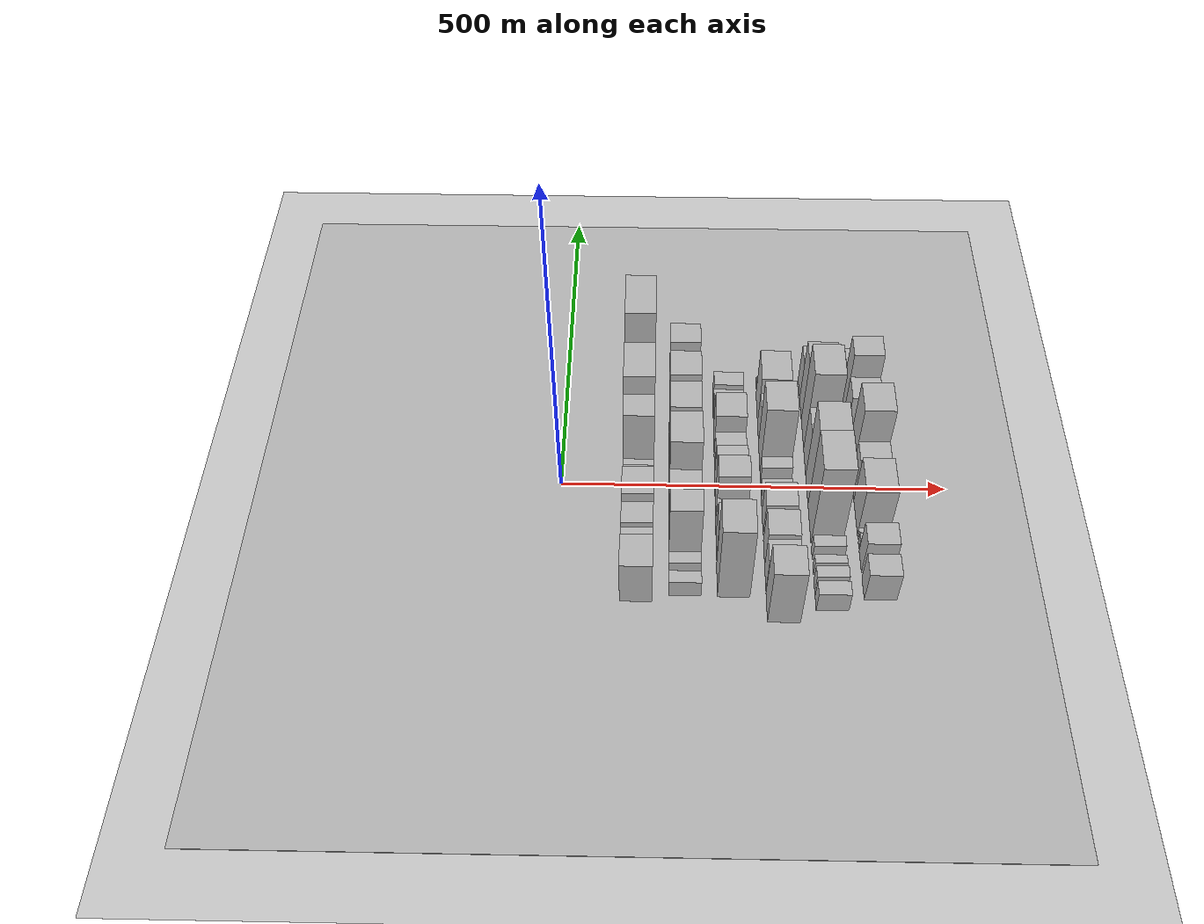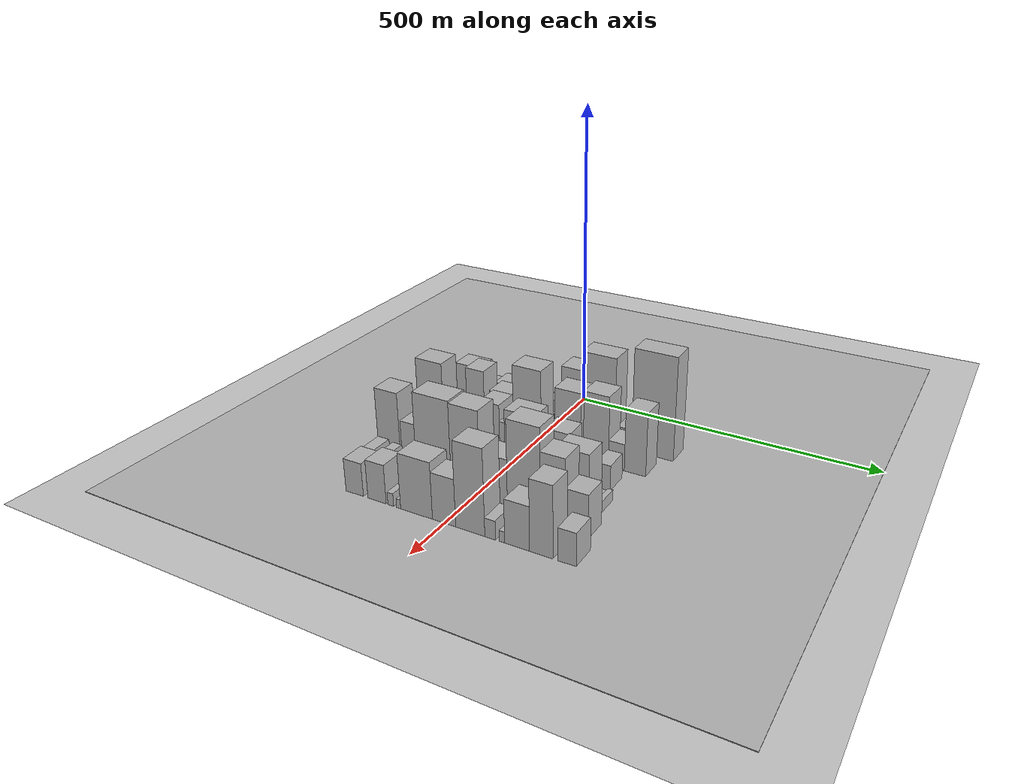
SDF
<sdf version="1.6">
 <world name="default">
  <include><name>ground_plane_1</name><uri>model://HANNAS_ground_plane</uri></include>
  <include>
   <name>ground_plane_2</name>
   <uri>model://HANNAS_ground_plane</uri>
   <pose>100 0 0  0 0 0</pose>
  </include>
  <model name="building_24">
   <static>1</static>
   <pose>100.0000 -155.9726 0 0.000000 0.000000 0.000000</pose>
   <link name="link">
    <pose>0 0 39.00 0 0 0</pose>
    <collision name="collision"><geometry><box><size>40.0000 46.3381 78.0000</size></box></geometry></collision>
    <visual name="visual">
     <cast_shadows>0</cast_shadows>
     <geometry><box><size>40.0000 46.3381 78.0000</size></box></geometry>
     <material>
      <script>
       <uri>model://HANNAS_wall/materials/scripts</uri>
       <uri>model://HANNAS_wall/materials/textures</uri>
       <name>vrc/HANNAS_wall</name>
      </script>
     </material>
    </visual>
   </link>
  </model>
  <model name="building_25">
   <static>1</static>
   <pose>100.0000 -118.1382 0 0.000000 0.000000 0.000000</pose>
   <link name="link">
    <pose>0 0 25.50 0 0 0</pose>
    <collision name="collision"><geometry><box><size>40.0000 29.3307 51.0000</size></box></geometry></collision>
    <visual name="visual">
     <cast_shadows>0</cast_shadows>
     <geometry><box><size>40.0000 29.3307 51.0000</size></box></geometry>
     <material>
      <script>
       <uri>model://HANNAS_wall/materials/scripts</uri>
       <uri>model://HANNAS_wall/materials/textures</uri>
       <name>vrc/HANNAS_wall</name>
      </script>
     </material>
    </visual>
   </link>
  </model>
  <model name="building_26">
   <static>1</static>
   <pose>100.0000 -87.1877 0 0.000000 0.000000 0.000000</pose>
   <link name="link">
    <pose>0 0 30.00 0 0 0</pose>
    <collision name="collision"><geometry><box><size>40.0000 32.5704 60.0000</size></box></geometry></collision>
    <visual name="visual">
     <cast_shadows>0</cast_shadows>
     <geometry><box><size>40.0000 32.5704 60.0000</size></box></geometry>
     <material>
      <script>
       <uri>model://HANNAS_wall/materials/scripts</uri>
       <uri>model://HANNAS_wall/materials/textures</uri>
       <name>vrc/HANNAS_wall</name>
      </script>
     </material>
    </visual>
   </link>
  </model>
  <model name="building_27">
   <static>1</static>
   <pose>100.0000 -46.4277 0 0.000000 0.000000 0.000000</pose>
   <link name="link">
    <pose>0 0 36.00 0 0 0</pose>
    <collision name="collision"><geometry><box><size>40.0000 42.9495 72.0000</size></box></geometry></collision>
    <visual name="visual">
     <cast_shadows>0</cast_shadows>
     <geometry><box><size>40.0000 42.9495 72.0000</size></box></geometry>
     <material>
      <script>
       <uri>model://HANNAS_wall/materials/scripts</uri>
       <uri>model://HANNAS_wall/materials/textures</uri>
       <name>vrc/HANNAS_wall</name>
      </script>
     </material>
    </visual>
   </link>
  </model>
  <model name="building_28">
   <static>1</static>
   <pose>100.0000 -13.3222 0 0.000000 0.000000 0.000000</pose>
   <link name="link">
    <pose>0 0 22.50 0 0 0</pose>
    <collision name="collision"><geometry><box><size>40.0000 23.2615 45.0000</size></box></geometry></collision>
    <visual name="visual">
     <cast_shadows>0</cast_shadows>
     <geometry><box><size>40.0000 23.2615 45.0000</size></box></geometry>
     <material>
      <script>
       <uri>model://HANNAS_wall/materials/scripts</uri>
       <uri>model://HANNAS_wall/materials/textures</uri>
       <name>vrc/HANNAS_wall</name>
      </script>
     </material>
    </visual>
   </link>
  </model>
  <model name="building_29">
   <static>1</static>
   <pose>100.0000 11.5886 0 0.000000 0.000000 0.000000</pose>
   <link name="link">
    <pose>0 0 15.00 0 0 0</pose>
    <collision name="collision"><geometry><box><size>40.0000 16.5600 30.0000</size></box></geometry></collision>
    <visual name="visual">
     <cast_shadows>0</cast_shadows>
     <geometry><box><size>40.0000 16.5600 30.0000</size></box></geometry>
     <material>
      <script>
       <uri>model://HANNAS_wall/materials/scripts</uri>
       <uri>model://HANNAS_wall/materials/textures</uri>
       <name>vrc/HANNAS_wall</name>
      </script>
     </material>
    </visual>
   </link>
  </model>
  <model name="building_30">
   <static>1</static>
   <pose>100.0000 37.7941 0 0.000000 0.000000 0.000000</pose>
   <link name="link">
    <pose>0 0 58.50 0 0 0</pose>
    <collision name="collision"><geometry><box><size>40.0000 35.8511 117.0000</size></box></geometry></collision>
    <visual name="visual">
     <cast_shadows>0</cast_shadows>
     <geometry><box><size>40.0000 35.8511 117.0000</size></box></geometry>
     <material>
      <script>
       <uri>model://HANNAS_wall/materials/scripts</uri>
       <uri>model://HANNAS_wall/materials/textures</uri>
       <name>vrc/HANNAS_wall</name>
      </script>
     </material>
    </visual>
   </link>
  </model>
  <model name="building_31">
   <static>1</static>
   <pose>100.0000 84.9089 0 0.000000 0.000000 0.000000</pose>
   <link name="link">
    <pose>0 0 75.00 0 0 0</pose>
    <collision name="collision"><geometry><box><size>40.0000 58.3783 150.0000</size></box></geometry></collision>
    <visual name="visual">
     <cast_shadows>0</cast_shadows>
     <geometry><box><size>40.0000 58.3783 150.0000</size></box></geometry>
     <material>
      <script>
       <uri>model://HANNAS_wall/materials/scripts</uri>
       <uri>model://HANNAS_wall/materials/textures</uri>
       <name>vrc/HANNAS_wall</name>
      </script>
     </material>
    </visual>
   </link>
  </model>
  <model name="building_32">
   <static>1</static>
   <pose>100.0000 128.4853 0 0.000000 0.000000 0.000000</pose>
   <link name="link">
    <pose>0 0 18.00 0 0 0</pose>
    <collision name="collision"><geometry><box><size>40.0000 20.7746 36.0000</size></box></geometry></collision>
    <visual name="visual">
     <cast_shadows>0</cast_shadows>
     <geometry><box><size>40.0000 20.7746 36.0000</size></box></geometry>
     <material>
      <script>
       <uri>model://HANNAS_wall/materials/scripts</uri>
       <uri>model://HANNAS_wall/materials/textures</uri>
       <name>vrc/HANNAS_wall</name>
      </script>
     </material>
    </visual>
   </link>
  </model>
  <model name="building_33">
   <static>1</static>
   <pose>100.0000 177.5142 0 0.000000 0.000000 0.000000</pose>
   <link name="link">
    <pose>0 0 87.00 0 0 0</pose>
    <collision name="collision"><geometry><box><size>40.0000 69.2832 174.0000</size></box></geometry></collision>
    <visual name="visual">
     <cast_shadows>0</cast_shadows>
     <geometry><box><size>40.0000 69.2832 174.0000</size></box></geometry>
     <material>
      <script>
       <uri>model://HANNAS_wall/materials/scripts</uri>
       <uri>model://HANNAS_wall/materials/textures</uri>
       <name>vrc/HANNAS_wall</name>
      </script>
     </material>
    </visual>
   </link>
  </model>
  <model name="building_74">
   <static>1</static>
   <pose>160.0000 -161.2127 0 0.000000 0.000000 0.000000</pose>
   <link name="link">
    <pose>0 0 15.00 0 0 0</pose>
    <collision name="collision"><geometry><box><size>40.0000 17.3645 30.0000</size></box></geometry></collision>
    <visual name="visual">
     <cast_shadows>0</cast_shadows>
     <geometry><box><size>40.0000 17.3645 30.0000</size></box></geometry>
     <material>
      <script>
       <uri>model://HANNAS_wall/materials/scripts</uri>
       <uri>model://HANNAS_wall/materials/textures</uri>
       <name>vrc/HANNAS_wall</name>
      </script>
     </material>
    </visual>
   </link>
  </model>
  <model name="building_75">
   <static>1</static>
   <pose>160.0000 -134.9675 0 0.000000 0.000000 0.000000</pose>
   <link name="link">
    <pose>0 0 16.50 0 0 0</pose>
    <collision name="collision"><geometry><box><size>40.0000 17.1258 33.0000</size></box></geometry></collision>
    <visual name="visual">
     <cast_shadows>0</cast_shadows>
     <geometry><box><size>40.0000 17.1258 33.0000</size></box></geometry>
     <material>
      <script>
       <uri>model://HANNAS_wall/materials/scripts</uri>
       <uri>model://HANNAS_wall/materials/textures</uri>
       <name>vrc/HANNAS_wall</name>
      </script>
     </material>
    </visual>
   </link>
  </model>
  <model name="building_76">
   <static>1</static>
   <pose>160.0000 -102.8985 0 0.000000 0.000000 0.000000</pose>
   <link name="link">
    <pose>0 0 54.00 0 0 0</pose>
    <collision name="collision"><geometry><box><size>40.0000 33.0123 108.0000</size></box></geometry></collision>
    <visual name="visual">
     <cast_shadows>0</cast_shadows>
     <geometry><box><size>40.0000 33.0123 108.0000</size></box></geometry>
     <material>
      <script>
       <uri>model://HANNAS_wall/materials/scripts</uri>
       <uri>model://HANNAS_wall/materials/textures</uri>
       <name>vrc/HANNAS_wall</name>
      </script>
     </material>
    </visual>
   </link>
  </model>
  <model name="building_77">
   <static>1</static>
   <pose>160.0000 -55.0341 0 0.000000 0.000000 0.000000</pose>
   <link name="link">
    <pose>0 0 39.00 0 0 0</pose>
    <collision name="collision"><geometry><box><size>40.0000 42.7164 78.0000</size></box></geometry></collision>
    <visual name="visual">
     <cast_shadows>0</cast_shadows>
     <geometry><box><size>40.0000 42.7164 78.0000</size></box></geometry>
     <material>
      <script>
       <uri>model://HANNAS_wall/materials/scripts</uri>
       <uri>model://HANNAS_wall/materials/textures</uri>
       <name>vrc/HANNAS_wall</name>
      </script>
     </material>
    </visual>
   </link>
  </model>
  <model name="building_78">
   <static>1</static>
   <pose>160.0000 -8.6108 0 0.000000 0.000000 0.000000</pose>
   <link name="link">
    <pose>0 0 66.00 0 0 0</pose>
    <collision name="collision"><geometry><box><size>40.0000 50.1302 132.0000</size></box></geometry></collision>
    <visual name="visual">
     <cast_shadows>0</cast_shadows>
     <geometry><box><size>40.0000 50.1302 132.0000</size></box></geometry>
     <material>
      <script>
       <uri>model://HANNAS_wall/materials/scripts</uri>
       <uri>model://HANNAS_wall/materials/textures</uri>
       <name>vrc/HANNAS_wall</name>
      </script>
     </material>
    </visual>
   </link>
  </model>
  <model name="building_79">
   <static>1</static>
   <pose>160.0000 25.9074 0 0.000000 0.000000 0.000000</pose>
   <link name="link">
    <pose>0 0 16.50 0 0 0</pose>
    <collision name="collision"><geometry><box><size>40.0000 18.9062 33.0000</size></box></geometry></collision>
    <visual name="visual">
     <cast_shadows>0</cast_shadows>
     <geometry><box><size>40.0000 18.9062 33.0000</size></box></geometry>
     <material>
      <script>
       <uri>model://HANNAS_wall/materials/scripts</uri>
       <uri>model://HANNAS_wall/materials/textures</uri>
       <name>vrc/HANNAS_wall</name>
      </script>
     </material>
    </visual>
   </link>
  </model>
  <model name="building_80">
   <static>1</static>
   <pose>160.0000 62.5028 0 0.000000 0.000000 0.000000</pose>
   <link name="link">
    <pose>0 0 55.50 0 0 0</pose>
    <collision name="collision"><geometry><box><size>40.0000 44.2846 111.0000</size></box></geometry></collision>
    <visual name="visual">
     <cast_shadows>0</cast_shadows>
     <geometry><box><size>40.0000 44.2846 111.0000</size></box></geometry>
     <material>
      <script>
       <uri>model://HANNAS_wall/materials/scripts</uri>
       <uri>model://HANNAS_wall/materials/textures</uri>
       <name>vrc/HANNAS_wall</name>
      </script>
     </material>
    </visual>
   </link>
  </model>
  <model name="building_81">
   <static>1</static>
   <pose>160.0000 110.7721 0 0.000000 0.000000 0.000000</pose>
   <link name="link">
    <pose>0 0 58.50 0 0 0</pose>
    <collision name="collision"><geometry><box><size>40.0000 42.2540 117.0000</size></box></geometry></collision>
    <visual name="visual">
     <cast_shadows>0</cast_shadows>
     <geometry><box><size>40.0000 42.2540 117.0000</size></box></geometry>
     <material>
      <script>
       <uri>model://HANNAS_wall/materials/scripts</uri>
       <uri>model://HANNAS_wall/materials/textures</uri>
       <name>vrc/HANNAS_wall</name>
      </script>
     </material>
    </visual>
   </link>
  </model>
  <model name="building_82">
   <static>1</static>
   <pose>160.0000 145.0580 0 0.000000 0.000000 0.000000</pose>
   <link name="link">
    <pose>0 0 22.50 0 0 0</pose>
    <collision name="collision"><geometry><box><size>40.0000 26.3178 45.0000</size></box></geometry></collision>
    <visual name="visual">
     <cast_shadows>0</cast_shadows>
     <geometry><box><size>40.0000 26.3178 45.0000</size></box></geometry>
     <material>
      <script>
       <uri>model://HANNAS_wall/materials/scripts</uri>
       <uri>model://HANNAS_wall/materials/textures</uri>
       <name>vrc/HANNAS_wall</name>
      </script>
     </material>
    </visual>
   </link>
  </model>
  <model name="building_83">
   <static>1</static>
   <pose>160.0000 175.5884 0 0.000000 0.000000 0.000000</pose>
   <link name="link">
    <pose>0 0 52.50 0 0 0</pose>
    <collision name="collision"><geometry><box><size>40.0000 34.7431 105.0000</size></box></geometry></collision>
    <visual name="visual">
     <cast_shadows>0</cast_shadows>
     <geometry><box><size>40.0000 34.7431 105.0000</size></box></geometry>
     <material>
      <script>
       <uri>model://HANNAS_wall/materials/scripts</uri>
       <uri>model://HANNAS_wall/materials/textures</uri>
       <name>vrc/HANNAS_wall</name>
      </script>
     </material>
    </visual>
   </link>
  </model>
  <model name="building_128">
   <static>1</static>
   <pose>220.0000 -146.8292 0 0.000000 0.000000 0.000000</pose>
   <link name="link">
    <pose>0 0 69.00 0 0 0</pose>
    <collision name="collision"><geometry><box><size>40.0000 47.8719 138.0000</size></box></geometry></collision>
    <visual name="visual">
     <cast_shadows>0</cast_shadows>
     <geometry><box><size>40.0000 47.8719 138.0000</size></box></geometry>
     <material>
      <script>
       <uri>model://HANNAS_wall/materials/scripts</uri>
       <uri>model://HANNAS_wall/materials/textures</uri>
       <name>vrc/HANNAS_wall</name>
      </script>
     </material>
    </visual>
   </link>
  </model>
  <model name="building_129">
   <static>1</static>
   <pose>220.0000 -98.4472 0 0.000000 0.000000 0.000000</pose>
   <link name="link">
    <pose>0 0 36.00 0 0 0</pose>
    <collision name="collision"><geometry><box><size>40.0000 36.8922 72.0000</size></box></geometry></collision>
    <visual name="visual">
     <cast_shadows>0</cast_shadows>
     <geometry><box><size>40.0000 36.8922 72.0000</size></box></geometry>
     <material>
      <script>
       <uri>model://HANNAS_wall/materials/scripts</uri>
       <uri>model://HANNAS_wall/materials/textures</uri>
       <name>vrc/HANNAS_wall</name>
      </script>
     </material>
    </visual>
   </link>
  </model>
  <model name="building_130">
   <static>1</static>
   <pose>220.0000 -67.7677 0 0.000000 0.000000 0.000000</pose>
   <link name="link">
    <pose>0 0 24.00 0 0 0</pose>
    <collision name="collision"><geometry><box><size>40.0000 24.4667 48.0000</size></box></geometry></collision>
    <visual name="visual">
     <cast_shadows>0</cast_shadows>
     <geometry><box><size>40.0000 24.4667 48.0000</size></box></geometry>
     <material>
      <script>
       <uri>model://HANNAS_wall/materials/scripts</uri>
       <uri>model://HANNAS_wall/materials/textures</uri>
       <name>vrc/HANNAS_wall</name>
      </script>
     </material>
    </visual>
   </link>
  </model>
  <model name="building_131">
   <static>1</static>
   <pose>220.0000 -38.5873 0 0.000000 0.000000 0.000000</pose>
   <link name="link">
    <pose>0 0 46.50 0 0 0</pose>
    <collision name="collision"><geometry><box><size>40.0000 33.8941 93.0000</size></box></geometry></collision>
    <visual name="visual">
     <cast_shadows>0</cast_shadows>
     <geometry><box><size>40.0000 33.8941 93.0000</size></box></geometry>
     <material>
      <script>
       <uri>model://HANNAS_wall/materials/scripts</uri>
       <uri>model://HANNAS_wall/materials/textures</uri>
       <name>vrc/HANNAS_wall</name>
      </script>
     </material>
    </visual>
   </link>
  </model>
  <model name="building_132">
   <static>1</static>
   <pose>220.0000 -2.9583 0 0.000000 0.000000 0.000000</pose>
   <link name="link">
    <pose>0 0 33.00 0 0 0</pose>
    <collision name="collision"><geometry><box><size>40.0000 37.3639 66.0000</size></box></geometry></collision>
    <visual name="visual">
     <cast_shadows>0</cast_shadows>
     <geometry><box><size>40.0000 37.3639 66.0000</size></box></geometry>
     <material>
      <script>
       <uri>model://HANNAS_wall/materials/scripts</uri>
       <uri>model://HANNAS_wall/materials/textures</uri>
       <name>vrc/HANNAS_wall</name>
      </script>
     </material>
    </visual>
   </link>
  </model>
  <model name="building_133">
   <static>1</static>
   <pose>220.0000 38.0160 0 0.000000 0.000000 0.000000</pose>
   <link name="link">
    <pose>0 0 24.00 0 0 0</pose>
    <collision name="collision"><geometry><box><size>40.0000 28.5847 48.0000</size></box></geometry></collision>
    <visual name="visual">
     <cast_shadows>0</cast_shadows>
     <geometry><box><size>40.0000 28.5847 48.0000</size></box></geometry>
     <material>
      <script>
       <uri>model://HANNAS_wall/materials/scripts</uri>
       <uri>model://HANNAS_wall/materials/textures</uri>
       <name>vrc/HANNAS_wall</name>
      </script>
     </material>
    </visual>
   </link>
  </model>
  <model name="building_134">
   <static>1</static>
   <pose>220.0000 76.7750 0 0.000000 0.000000 0.000000</pose>
   <link name="link">
    <pose>0 0 37.50 0 0 0</pose>
    <collision name="collision"><geometry><box><size>40.0000 40.9334 75.0000</size></box></geometry></collision>
    <visual name="visual">
     <cast_shadows>0</cast_shadows>
     <geometry><box><size>40.0000 40.9334 75.0000</size></box></geometry>
     <material>
      <script>
       <uri>model://HANNAS_wall/materials/scripts</uri>
       <uri>model://HANNAS_wall/materials/textures</uri>
       <name>vrc/HANNAS_wall</name>
      </script>
     </material>
    </visual>
   </link>
  </model>
  <model name="building_135">
   <static>1</static>
   <pose>220.0000 114.5436 0 0.000000 0.000000 0.000000</pose>
   <link name="link">
    <pose>0 0 15.00 0 0 0</pose>
    <collision name="collision"><geometry><box><size>40.0000 16.6037 30.0000</size></box></geometry></collision>
    <visual name="visual">
     <cast_shadows>0</cast_shadows>
     <geometry><box><size>40.0000 16.6037 30.0000</size></box></geometry>
     <material>
      <script>
       <uri>model://HANNAS_wall/materials/scripts</uri>
       <uri>model://HANNAS_wall/materials/textures</uri>
       <name>vrc/HANNAS_wall</name>
      </script>
     </material>
    </visual>
   </link>
  </model>
  <model name="building_136">
   <static>1</static>
   <pose>220.0000 131.3635 0 0.000000 0.000000 0.000000</pose>
   <link name="link">
    <pose>0 0 16.50 0 0 0</pose>
    <collision name="collision"><geometry><box><size>40.0000 17.0361 33.0000</size></box></geometry></collision>
    <visual name="visual">
     <cast_shadows>0</cast_shadows>
     <geometry><box><size>40.0000 17.0361 33.0000</size></box></geometry>
     <material>
      <script>
       <uri>model://HANNAS_wall/materials/scripts</uri>
       <uri>model://HANNAS_wall/materials/textures</uri>
       <name>vrc/HANNAS_wall</name>
      </script>
     </material>
    </visual>
   </link>
  </model>
  <model name="building_137">
   <static>1</static>
   <pose>220.0000 151.8199 0 0.000000 0.000000 0.000000</pose>
   <link name="link">
    <pose>0 0 21.00 0 0 0</pose>
    <collision name="collision"><geometry><box><size>40.0000 23.8767 42.0000</size></box></geometry></collision>
    <visual name="visual">
     <cast_shadows>0</cast_shadows>
     <geometry><box><size>40.0000 23.8767 42.0000</size></box></geometry>
     <material>
      <script>
       <uri>model://HANNAS_wall/materials/scripts</uri>
       <uri>model://HANNAS_wall/materials/textures</uri>
       <name>vrc/HANNAS_wall</name>
      </script>
     </material>
    </visual>
   </link>
  </model>
  <model name="building_183">
   <static>1</static>
   <pose>280.0000 -184.7576 0 0.000000 0.000000 0.000000</pose>
   <link name="link">
    <pose>0 0 52.50 0 0 0</pose>
    <collision name="collision"><geometry><box><size>40.0000 41.8544 105.0000</size></box></geometry></collision>
    <visual name="visual">
     <cast_shadows>0</cast_shadows>
     <geometry><box><size>40.0000 41.8544 105.0000</size></box></geometry>
     <material>
      <script>
       <uri>model://HANNAS_wall/materials/scripts</uri>
       <uri>model://HANNAS_wall/materials/textures</uri>
       <name>vrc/HANNAS_wall</name>
      </script>
     </material>
    </visual>
   </link>
  </model>
  <model name="building_184">
   <static>1</static>
   <pose>280.0000 -142.8753 0 0.000000 0.000000 0.000000</pose>
   <link name="link">
    <pose>0 0 30.00 0 0 0</pose>
    <collision name="collision"><geometry><box><size>40.0000 35.9101 60.0000</size></box></geometry></collision>
    <visual name="visual">
     <cast_shadows>0</cast_shadows>
     <geometry><box><size>40.0000 35.9101 60.0000</size></box></geometry>
     <material>
      <script>
       <uri>model://HANNAS_wall/materials/scripts</uri>
       <uri>model://HANNAS_wall/materials/textures</uri>
       <name>vrc/HANNAS_wall</name>
      </script>
     </material>
    </visual>
   </link>
  </model>
  <model name="building_185">
   <static>1</static>
   <pose>280.0000 -105.3331 0 0.000000 0.000000 0.000000</pose>
   <link name="link">
    <pose>0 0 34.50 0 0 0</pose>
    <collision name="collision"><geometry><box><size>40.0000 39.1743 69.0000</size></box></geometry></collision>
    <visual name="visual">
     <cast_shadows>0</cast_shadows>
     <geometry><box><size>40.0000 39.1743 69.0000</size></box></geometry>
     <material>
      <script>
       <uri>model://HANNAS_wall/materials/scripts</uri>
       <uri>model://HANNAS_wall/materials/textures</uri>
       <name>vrc/HANNAS_wall</name>
      </script>
     </material>
    </visual>
   </link>
  </model>
  <model name="building_186">
   <static>1</static>
   <pose>280.0000 -58.3916 0 0.000000 0.000000 0.000000</pose>
   <link name="link">
    <pose>0 0 31.50 0 0 0</pose>
    <collision name="collision"><geometry><box><size>40.0000 36.7086 63.0000</size></box></geometry></collision>
    <visual name="visual">
     <cast_shadows>0</cast_shadows>
     <geometry><box><size>40.0000 36.7086 63.0000</size></box></geometry>
     <material>
      <script>
       <uri>model://HANNAS_wall/materials/scripts</uri>
       <uri>model://HANNAS_wall/materials/textures</uri>
       <name>vrc/HANNAS_wall</name>
      </script>
     </material>
    </visual>
   </link>
  </model>
  <model name="building_187">
   <static>1</static>
   <pose>280.0000 -30.1824 0 0.000000 0.000000 0.000000</pose>
   <link name="link">
    <pose>0 0 16.50 0 0 0</pose>
    <collision name="collision"><geometry><box><size>40.0000 19.7098 33.0000</size></box></geometry></collision>
    <visual name="visual">
     <cast_shadows>0</cast_shadows>
     <geometry><box><size>40.0000 19.7098 33.0000</size></box></geometry>
     <material>
      <script>
       <uri>model://HANNAS_wall/materials/scripts</uri>
       <uri>model://HANNAS_wall/materials/textures</uri>
       <name>vrc/HANNAS_wall</name>
      </script>
     </material>
    </visual>
   </link>
  </model>
  <model name="building_188">
   <static>1</static>
   <pose>280.0000 -15.9907 0 0.000000 0.000000 0.000000</pose>
   <link name="link">
    <pose>0 0 10.50 0 0 0</pose>
    <collision name="collision"><geometry><box><size>40.0000 8.6736 21.0000</size></box></geometry></collision>
    <visual name="visual">
     <cast_shadows>0</cast_shadows>
     <geometry><box><size>40.0000 8.6736 21.0000</size></box></geometry>
     <material>
      <script>
       <uri>model://HANNAS_wall/materials/scripts</uri>
       <uri>model://HANNAS_wall/materials/textures</uri>
       <name>vrc/HANNAS_wall</name>
      </script>
     </material>
    </visual>
   </link>
  </model>
  <model name="building_189">
   <static>1</static>
   <pose>280.0000 -6.8378 0 0.000000 0.000000 0.000000</pose>
   <link name="link">
    <pose>0 0 10.50 0 0 0</pose>
    <collision name="collision"><geometry><box><size>40.0000 9.6321 21.0000</size></box></geometry></collision>
    <visual name="visual">
     <cast_shadows>0</cast_shadows>
     <geometry><box><size>40.0000 9.6321 21.0000</size></box></geometry>
     <material>
      <script>
       <uri>model://HANNAS_wall/materials/scripts</uri>
       <uri>model://HANNAS_wall/materials/textures</uri>
       <name>vrc/HANNAS_wall</name>
      </script>
     </material>
    </visual>
   </link>
  </model>
  <model name="building_190">
   <static>1</static>
   <pose>280.0000 15.1120 0 0.000000 0.000000 0.000000</pose>
   <link name="link">
    <pose>0 0 16.50 0 0 0</pose>
    <collision name="collision"><geometry><box><size>40.0000 18.2676 33.0000</size></box></geometry></collision>
    <visual name="visual">
     <cast_shadows>0</cast_shadows>
     <geometry><box><size>40.0000 18.2676 33.0000</size></box></geometry>
     <material>
      <script>
       <uri>model://HANNAS_wall/materials/scripts</uri>
       <uri>model://HANNAS_wall/materials/textures</uri>
       <name>vrc/HANNAS_wall</name>
      </script>
     </material>
    </visual>
   </link>
  </model>
  <model name="building_191">
   <static>1</static>
   <pose>280.0000 48.6537 0 0.000000 0.000000 0.000000</pose>
   <link name="link">
    <pose>0 0 63.00 0 0 0</pose>
    <collision name="collision"><geometry><box><size>40.0000 48.8157 126.0000</size></box></geometry></collision>
    <visual name="visual">
     <cast_shadows>0</cast_shadows>
     <geometry><box><size>40.0000 48.8157 126.0000</size></box></geometry>
     <material>
      <script>
       <uri>model://HANNAS_wall/materials/scripts</uri>
       <uri>model://HANNAS_wall/materials/textures</uri>
       <name>vrc/HANNAS_wall</name>
      </script>
     </material>
    </visual>
   </link>
  </model>
  <model name="building_192">
   <static>1</static>
   <pose>280.0000 90.3770 0 0.000000 0.000000 0.000000</pose>
   <link name="link">
    <pose>0 0 31.50 0 0 0</pose>
    <collision name="collision"><geometry><box><size>40.0000 34.6309 63.0000</size></box></geometry></collision>
    <visual name="visual">
     <cast_shadows>0</cast_shadows>
     <geometry><box><size>40.0000 34.6309 63.0000</size></box></geometry>
     <material>
      <script>
       <uri>model://HANNAS_wall/materials/scripts</uri>
       <uri>model://HANNAS_wall/materials/textures</uri>
       <name>vrc/HANNAS_wall</name>
      </script>
     </material>
    </visual>
   </link>
  </model>
  <model name="building_193">
   <static>1</static>
   <pose>280.0000 133.5346 0 0.000000 0.000000 0.000000</pose>
   <link name="link">
    <pose>0 0 45.00 0 0 0</pose>
    <collision name="collision"><geometry><box><size>40.0000 51.6845 90.0000</size></box></geometry></collision>
    <visual name="visual">
     <cast_shadows>0</cast_shadows>
     <geometry><box><size>40.0000 51.6845 90.0000</size></box></geometry>
     <material>
      <script>
       <uri>model://HANNAS_wall/materials/scripts</uri>
       <uri>model://HANNAS_wall/materials/textures</uri>
       <name>vrc/HANNAS_wall</name>
      </script>
     </material>
    </visual>
   </link>
  </model>
  <model name="building_194">
   <static>1</static>
   <pose>280.0000 173.3578 0 0.000000 0.000000 0.000000</pose>
   <link name="link">
    <pose>0 0 9.00 0 0 0</pose>
    <collision name="collision"><geometry><box><size>40.0000 7.9619 18.0000</size></box></geometry></collision>
    <visual name="visual">
     <cast_shadows>0</cast_shadows>
     <geometry><box><size>40.0000 7.9619 18.0000</size></box></geometry>
     <material>
      <script>
       <uri>model://HANNAS_wall/materials/scripts</uri>
       <uri>model://HANNAS_wall/materials/textures</uri>
       <name>vrc/HANNAS_wall</name>
      </script>
     </material>
    </visual>
   </link>
  </model>
  <model name="building_240">
   <static>1</static>
   <pose>340.0000 -177.8348 0 0.000000 0.000000 0.000000</pose>
   <link name="link">
    <pose>0 0 18.00 0 0 0</pose>
    <collision name="collision"><geometry><box><size>40.0000 20.0086 36.0000</size></box></geometry></collision>
    <visual name="visual">
     <cast_shadows>0</cast_shadows>
     <geometry><box><size>40.0000 20.0086 36.0000</size></box></geometry>
     <material>
      <script>
       <uri>model://HANNAS_wall/materials/scripts</uri>
       <uri>model://HANNAS_wall/materials/textures</uri>
       <name>vrc/HANNAS_wall</name>
      </script>
     </material>
    </visual>
   </link>
  </model>
  <model name="building_241">
   <static>1</static>
   <pose>340.0000 -164.2985 0 0.000000 0.000000 0.000000</pose>
   <link name="link">
    <pose>0 0 7.50 0 0 0</pose>
    <collision name="collision"><geometry><box><size>40.0000 7.0640 15.0000</size></box></geometry></collision>
    <visual name="visual">
     <cast_shadows>0</cast_shadows>
     <geometry><box><size>40.0000 7.0640 15.0000</size></box></geometry>
     <material>
      <script>
       <uri>model://HANNAS_wall/materials/scripts</uri>
       <uri>model://HANNAS_wall/materials/textures</uri>
       <name>vrc/HANNAS_wall</name>
      </script>
     </material>
    </visual>
   </link>
  </model>
  <model name="building_242">
   <static>1</static>
   <pose>340.0000 -152.4753 0 0.000000 0.000000 0.000000</pose>
   <link name="link">
    <pose>0 0 16.50 0 0 0</pose>
    <collision name="collision"><geometry><box><size>40.0000 16.5824 33.0000</size></box></geometry></collision>
    <visual name="visual">
     <cast_shadows>0</cast_shadows>
     <geometry><box><size>40.0000 16.5824 33.0000</size></box></geometry>
     <material>
      <script>
       <uri>model://HANNAS_wall/materials/scripts</uri>
       <uri>model://HANNAS_wall/materials/textures</uri>
       <name>vrc/HANNAS_wall</name>
      </script>
     </material>
    </visual>
   </link>
  </model>
  <model name="building_243">
   <static>1</static>
   <pose>340.0000 -129.9055 0 0.000000 0.000000 0.000000</pose>
   <link name="link">
    <pose>0 0 13.50 0 0 0</pose>
    <collision name="collision"><geometry><box><size>40.0000 12.5571 27.0000</size></box></geometry></collision>
    <visual name="visual">
     <cast_shadows>0</cast_shadows>
     <geometry><box><size>40.0000 12.5571 27.0000</size></box></geometry>
     <material>
      <script>
       <uri>model://HANNAS_wall/materials/scripts</uri>
       <uri>model://HANNAS_wall/materials/textures</uri>
       <name>vrc/HANNAS_wall</name>
      </script>
     </material>
    </visual>
   </link>
  </model>
  <model name="building_244">
   <static>1</static>
   <pose>340.0000 -105.1873 0 0.000000 0.000000 0.000000</pose>
   <link name="link">
    <pose>0 0 15.00 0 0 0</pose>
    <collision name="collision"><geometry><box><size>40.0000 16.8793 30.0000</size></box></geometry></collision>
    <visual name="visual">
     <cast_shadows>0</cast_shadows>
     <geometry><box><size>40.0000 16.8793 30.0000</size></box></geometry>
     <material>
      <script>
       <uri>model://HANNAS_wall/materials/scripts</uri>
       <uri>model://HANNAS_wall/materials/textures</uri>
       <name>vrc/HANNAS_wall</name>
      </script>
     </material>
    </visual>
   </link>
  </model>
  <model name="building_245">
   <static>1</static>
   <pose>340.0000 -58.7203 0 0.000000 0.000000 0.000000</pose>
   <link name="link">
    <pose>0 0 76.50 0 0 0</pose>
    <collision name="collision"><geometry><box><size>40.0000 60.0546 153.0000</size></box></geometry></collision>
    <visual name="visual">
     <cast_shadows>0</cast_shadows>
     <geometry><box><size>40.0000 60.0546 153.0000</size></box></geometry>
     <material>
      <script>
       <uri>model://HANNAS_wall/materials/scripts</uri>
       <uri>model://HANNAS_wall/materials/textures</uri>
       <name>vrc/HANNAS_wall</name>
      </script>
     </material>
    </visual>
   </link>
  </model>
  <model name="building_246">
   <static>1</static>
   <pose>340.0000 -4.7127 0 0.000000 0.000000 0.000000</pose>
   <link name="link">
    <pose>0 0 75.00 0 0 0</pose>
    <collision name="collision"><geometry><box><size>40.0000 47.9607 150.0000</size></box></geometry></collision>
    <visual name="visual">
     <cast_shadows>0</cast_shadows>
     <geometry><box><size>40.0000 47.9607 150.0000</size></box></geometry>
     <material>
      <script>
       <uri>model://HANNAS_wall/materials/scripts</uri>
       <uri>model://HANNAS_wall/materials/textures</uri>
       <name>vrc/HANNAS_wall</name>
      </script>
     </material>
    </visual>
   </link>
  </model>
  <model name="building_247">
   <static>1</static>
   <pose>340.0000 41.4983 0 0.000000 0.000000 0.000000</pose>
   <link name="link">
    <pose>0 0 43.50 0 0 0</pose>
    <collision name="collision"><geometry><box><size>40.0000 44.4612 87.0000</size></box></geometry></collision>
    <visual name="visual">
     <cast_shadows>0</cast_shadows>
     <geometry><box><size>40.0000 44.4612 87.0000</size></box></geometry>
     <material>
      <script>
       <uri>model://HANNAS_wall/materials/scripts</uri>
       <uri>model://HANNAS_wall/materials/textures</uri>
       <name>vrc/HANNAS_wall</name>
      </script>
     </material>
    </visual>
   </link>
  </model>
  <model name="building_248">
   <static>1</static>
   <pose>340.0000 89.5784 0 0.000000 0.000000 0.000000</pose>
   <link name="link">
    <pose>0 0 75.00 0 0 0</pose>
    <collision name="collision"><geometry><box><size>40.0000 51.6991 150.0000</size></box></geometry></collision>
    <visual name="visual">
     <cast_shadows>0</cast_shadows>
     <geometry><box><size>40.0000 51.6991 150.0000</size></box></geometry>
     <material>
      <script>
       <uri>model://HANNAS_wall/materials/scripts</uri>
       <uri>model://HANNAS_wall/materials/textures</uri>
       <name>vrc/HANNAS_wall</name>
      </script>
     </material>
    </visual>
   </link>
  </model>
  <model name="building_249">
   <static>1</static>
   <pose>340.0000 134.6198 0 0.000000 0.000000 0.000000</pose>
   <link name="link">
    <pose>0 0 57.00 0 0 0</pose>
    <collision name="collision"><geometry><box><size>40.0000 38.3835 114.0000</size></box></geometry></collision>
    <visual name="visual">
     <cast_shadows>0</cast_shadows>
     <geometry><box><size>40.0000 38.3835 114.0000</size></box></geometry>
     <material>
      <script>
       <uri>model://HANNAS_wall/materials/scripts</uri>
       <uri>model://HANNAS_wall/materials/textures</uri>
       <name>vrc/HANNAS_wall</name>
      </script>
     </material>
    </visual>
   </link>
  </model>
  <model name="building_250">
   <static>1</static>
   <pose>340.0000 171.3164 0 0.000000 0.000000 0.000000</pose>
   <link name="link">
    <pose>0 0 34.50 0 0 0</pose>
    <collision name="collision"><geometry><box><size>40.0000 35.0097 69.0000</size></box></geometry></collision>
    <visual name="visual">
     <cast_shadows>0</cast_shadows>
     <geometry><box><size>40.0000 35.0097 69.0000</size></box></geometry>
     <material>
      <script>
       <uri>model://HANNAS_wall/materials/scripts</uri>
       <uri>model://HANNAS_wall/materials/textures</uri>
       <name>vrc/HANNAS_wall</name>
      </script>
     </material>
    </visual>
   </link>
  </model>
  <model name="building_296">
   <static>1</static>
   <pose>400.0000 -155.6065 0 0.000000 0.000000 0.000000</pose>
   <link name="link">
    <pose>0 0 27.00 0 0 0</pose>
    <collision name="collision"><geometry><box><size>40.0000 31.4943 54.0000</size></box></geometry></collision>
    <visual name="visual">
     <cast_shadows>0</cast_shadows>
     <geometry><box><size>40.0000 31.4943 54.0000</size></box></geometry>
     <material>
      <script>
       <uri>model://HANNAS_wall/materials/scripts</uri>
       <uri>model://HANNAS_wall/materials/textures</uri>
       <name>vrc/HANNAS_wall</name>
      </script>
     </material>
    </visual>
   </link>
  </model>
  <model name="building_297">
   <static>1</static>
   <pose>400.0000 -115.6897 0 0.000000 0.000000 0.000000</pose>
   <link name="link">
    <pose>0 0 31.50 0 0 0</pose>
    <collision name="collision"><geometry><box><size>40.0000 32.3393 63.0000</size></box></geometry></collision>
    <visual name="visual">
     <cast_shadows>0</cast_shadows>
     <geometry><box><size>40.0000 32.3393 63.0000</size></box></geometry>
     <material>
      <script>
       <uri>model://HANNAS_wall/materials/scripts</uri>
       <uri>model://HANNAS_wall/materials/textures</uri>
       <name>vrc/HANNAS_wall</name>
      </script>
     </material>
    </visual>
   </link>
  </model>
  <model name="building_298">
   <static>1</static>
   <pose>400.0000 -91.5178 0 0.000000 0.000000 0.000000</pose>
   <link name="link">
    <pose>0 0 10.50 0 0 0</pose>
    <collision name="collision"><geometry><box><size>40.0000 10.0044 21.0000</size></box></geometry></collision>
    <visual name="visual">
     <cast_shadows>0</cast_shadows>
     <geometry><box><size>40.0000 10.0044 21.0000</size></box></geometry>
     <material>
      <script>
       <uri>model://HANNAS_wall/materials/scripts</uri>
       <uri>model://HANNAS_wall/materials/textures</uri>
       <name>vrc/HANNAS_wall</name>
      </script>
     </material>
    </visual>
   </link>
  </model>
  <model name="building_299">
   <static>1</static>
   <pose>400.0000 -77.9795 0 0.000000 0.000000 0.000000</pose>
   <link name="link">
    <pose>0 0 7.50 0 0 0</pose>
    <collision name="collision"><geometry><box><size>40.0000 7.0722 15.0000</size></box></geometry></collision>
    <visual name="visual">
     <cast_shadows>0</cast_shadows>
     <geometry><box><size>40.0000 7.0722 15.0000</size></box></geometry>
     <material>
      <script>
       <uri>model://HANNAS_wall/materials/scripts</uri>
       <uri>model://HANNAS_wall/materials/textures</uri>
       <name>vrc/HANNAS_wall</name>
      </script>
     </material>
    </visual>
   </link>
  </model>
  <model name="building_300">
   <static>1</static>
   <pose>400.0000 -47.4839 0 0.000000 0.000000 0.000000</pose>
   <link name="link">
    <pose>0 0 45.00 0 0 0</pose>
    <collision name="collision"><geometry><box><size>40.0000 53.9189 90.0000</size></box></geometry></collision>
    <visual name="visual">
     <cast_shadows>0</cast_shadows>
     <geometry><box><size>40.0000 53.9189 90.0000</size></box></geometry>
     <material>
      <script>
       <uri>model://HANNAS_wall/materials/scripts</uri>
       <uri>model://HANNAS_wall/materials/textures</uri>
       <name>vrc/HANNAS_wall</name>
      </script>
     </material>
    </visual>
   </link>
  </model>
  <model name="building_301">
   <static>1</static>
   <pose>400.0000 -1.4168 0 0.000000 0.000000 0.000000</pose>
   <link name="link">
    <pose>0 0 37.50 0 0 0</pose>
    <collision name="collision"><geometry><box><size>40.0000 38.2153 75.0000</size></box></geometry></collision>
    <visual name="visual">
     <cast_shadows>0</cast_shadows>
     <geometry><box><size>40.0000 38.2153 75.0000</size></box></geometry>
     <material>
      <script>
       <uri>model://HANNAS_wall/materials/scripts</uri>
       <uri>model://HANNAS_wall/materials/textures</uri>
       <name>vrc/HANNAS_wall</name>
      </script>
     </material>
    </visual>
   </link>
  </model>
  <model name="building_302">
   <static>1</static>
   <pose>400.0000 41.0060 0 0.000000 0.000000 0.000000</pose>
   <link name="link">
    <pose>0 0 67.50 0 0 0</pose>
    <collision name="collision"><geometry><box><size>40.0000 46.6303 135.0000</size></box></geometry></collision>
    <visual name="visual">
     <cast_shadows>0</cast_shadows>
     <geometry><box><size>40.0000 46.6303 135.0000</size></box></geometry>
     <material>
      <script>
       <uri>model://HANNAS_wall/materials/scripts</uri>
       <uri>model://HANNAS_wall/materials/textures</uri>
       <name>vrc/HANNAS_wall</name>
      </script>
     </material>
    </visual>
   </link>
  </model>
  <model name="building_303">
   <static>1</static>
   <pose>400.0000 72.7187 0 0.000000 0.000000 0.000000</pose>
   <link name="link">
    <pose>0 0 15.00 0 0 0</pose>
    <collision name="collision"><geometry><box><size>40.0000 16.7949 30.0000</size></box></geometry></collision>
    <visual name="visual">
     <cast_shadows>0</cast_shadows>
     <geometry><box><size>40.0000 16.7949 30.0000</size></box></geometry>
     <material>
      <script>
       <uri>model://HANNAS_wall/materials/scripts</uri>
       <uri>model://HANNAS_wall/materials/textures</uri>
       <name>vrc/HANNAS_wall</name>
      </script>
     </material>
    </visual>
   </link>
  </model>
  <model name="building_304">
   <static>1</static>
   <pose>400.0000 91.1729 0 0.000000 0.000000 0.000000</pose>
   <link name="link">
    <pose>0 0 9.00 0 0 0</pose>
    <collision name="collision"><geometry><box><size>40.0000 8.1135 18.0000</size></box></geometry></collision>
    <visual name="visual">
     <cast_shadows>0</cast_shadows>
     <geometry><box><size>40.0000 8.1135 18.0000</size></box></geometry>
     <material>
      <script>
       <uri>model://HANNAS_wall/materials/scripts</uri>
       <uri>model://HANNAS_wall/materials/textures</uri>
       <name>vrc/HANNAS_wall</name>
      </script>
     </material>
    </visual>
   </link>
  </model>
  <model name="building_305">
   <static>1</static>
   <pose>400.0000 114.1841 0 0.000000 0.000000 0.000000</pose>
   <link name="link">
    <pose>0 0 34.50 0 0 0</pose>
    <collision name="collision"><geometry><box><size>40.0000 37.9090 69.0000</size></box></geometry></collision>
    <visual name="visual">
     <cast_shadows>0</cast_shadows>
     <geometry><box><size>40.0000 37.9090 69.0000</size></box></geometry>
     <material>
      <script>
       <uri>model://HANNAS_wall/materials/scripts</uri>
       <uri>model://HANNAS_wall/materials/textures</uri>
       <name>vrc/HANNAS_wall</name>
      </script>
     </material>
    </visual>
   </link>
  </model>
  <model name="building_306">
   <static>1</static>
   <pose>400.0000 150.5826 0 0.000000 0.000000 0.000000</pose>
   <link name="link">
    <pose>0 0 55.50 0 0 0</pose>
    <collision name="collision"><geometry><box><size>40.0000 34.8880 111.0000</size></box></geometry></collision>
    <visual name="visual">
     <cast_shadows>0</cast_shadows>
     <geometry><box><size>40.0000 34.8880 111.0000</size></box></geometry>
     <material>
      <script>
       <uri>model://HANNAS_wall/materials/scripts</uri>
       <uri>model://HANNAS_wall/materials/textures</uri>
       <name>vrc/HANNAS_wall</name>
      </script>
     </material>
    </visual>
   </link>
  </model>
  <model name="building_307">
   <static>1</static>
   <pose>400.0000 188.5386 0 0.000000 0.000000 0.000000</pose>
   <link name="link">
    <pose>0 0 25.50 0 0 0</pose>
    <collision name="collision"><geometry><box><size>40.0000 27.0238 51.0000</size></box></geometry></collision>
    <visual name="visual">
     <cast_shadows>0</cast_shadows>
     <geometry><box><size>40.0000 27.0238 51.0000</size></box></geometry>
     <material>
      <script>
       <uri>model://HANNAS_wall/materials/scripts</uri>
       <uri>model://HANNAS_wall/materials/textures</uri>
       <name>vrc/HANNAS_wall</name>
      </script>
     </material>
    </visual>
   </link>
  </model>
 </world>
</sdf>
